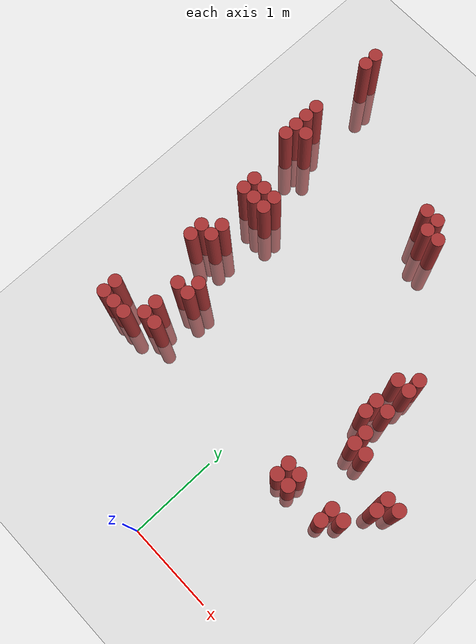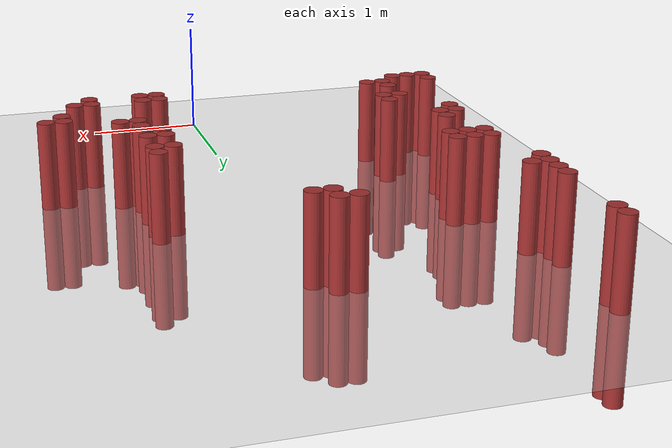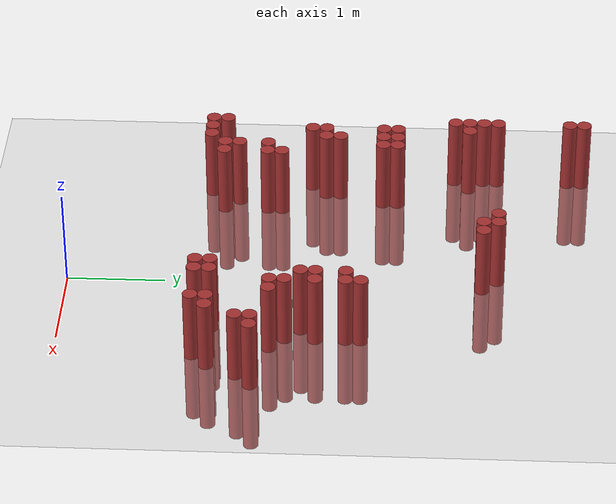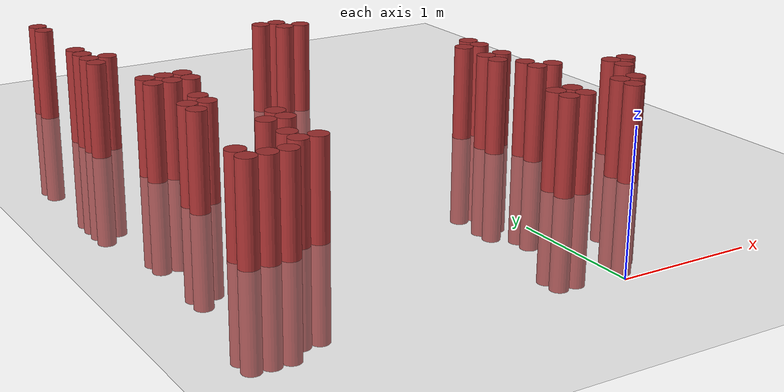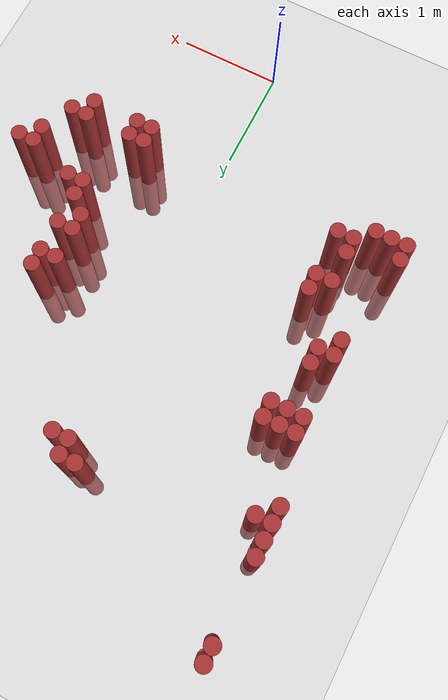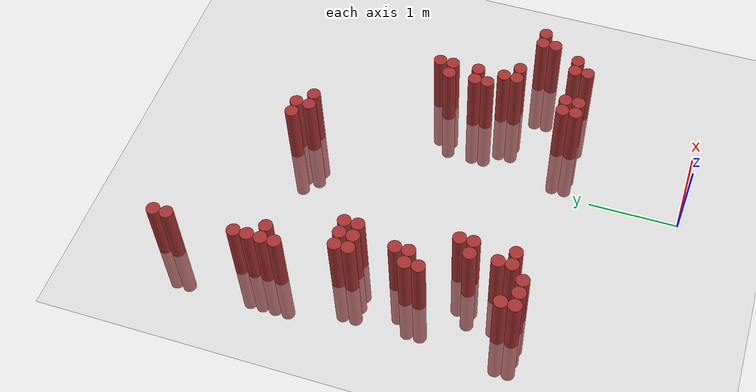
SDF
<sdf version="1.6">
 <world name="default">
  <model name="ground_plane">
   <static>1</static>
   <link name="link">
    <collision name="collision">
     <geometry><plane><normal>0 0 1</normal><size>100 100</size></plane></geometry>
     <surface><friction><ode><mu>100</mu><mu2>50</mu2></ode></friction></surface>
    </collision>
    <visual name="visual">
     <cast_shadows>0</cast_shadows>
     <geometry><plane><normal>0 0 1</normal><size>100 100</size></plane></geometry>
     <material>
      <script><uri>file://media/materials/scripts/gazebo.material</uri><name>Gazebo/Grey</name></script>
     </material>
    </visual>
   </link>
  </model>
  <model name="unit_cylinder_320">
   <static>1</static>
   <pose>-1.925000 1.375000 0.000000 0.000000 0.000000 0.000000</pose>
   <link name="link">
    <inertial>
     <mass>1</mass>
     <inertia><ixx>0.145833</ixx><ixy>0</ixy><ixz>0</ixz><iyy>0.145833</iyy><iyz>0</iyz><izz>0.125</izz></inertia>
    </inertial>
    <collision name="collision">
     <geometry><cylinder><radius>0.075000</radius><length>1.5</length></cylinder></geometry>
    </collision>
    <visual name="visual">
     <geometry><cylinder><radius>0.075000</radius><length>1.5</length></cylinder></geometry>
     <material>
      <ambient>0.648000 0.192000 0.192000 1</ambient>
      <diffuse>0.648000 0.192000 0.192000 1</diffuse>
     </material>
     <material>
      <script><name>Gazebo/Grey</name><uri>file://media/materials/scripts/gazebo.material</uri></script>
     </material>
    </visual>
   </link>
  </model>
  <model name="unit_cylinder_321">
   <static>1</static>
   <pose>-1.925000 1.525000 0.000000 0.000000 0.000000 0.000000</pose>
   <link name="link">
    <inertial>
     <mass>1</mass>
     <inertia><ixx>0.145833</ixx><ixy>0</ixy><ixz>0</ixz><iyy>0.145833</iyy><iyz>0</iyz><izz>0.125</izz></inertia>
    </inertial>
    <collision name="collision">
     <geometry><cylinder><radius>0.075000</radius><length>1.5</length></cylinder></geometry>
    </collision>
    <visual name="visual">
     <geometry><cylinder><radius>0.075000</radius><length>1.5</length></cylinder></geometry>
     <material>
      <ambient>0.648000 0.192000 0.192000 1</ambient>
      <diffuse>0.648000 0.192000 0.192000 1</diffuse>
     </material>
     <material>
      <script><name>Gazebo/Grey</name><uri>file://media/materials/scripts/gazebo.material</uri></script>
     </material>
    </visual>
   </link>
  </model>
  <model name="unit_cylinder_322">
   <static>1</static>
   <pose>-1.925000 3.925000 0.000000 0.000000 0.000000 0.000000</pose>
   <link name="link">
    <inertial>
     <mass>1</mass>
     <inertia><ixx>0.145833</ixx><ixy>0</ixy><ixz>0</ixz><iyy>0.145833</iyy><iyz>0</iyz><izz>0.125</izz></inertia>
    </inertial>
    <collision name="collision">
     <geometry><cylinder><radius>0.075000</radius><length>1.5</length></cylinder></geometry>
    </collision>
    <visual name="visual">
     <geometry><cylinder><radius>0.075000</radius><length>1.5</length></cylinder></geometry>
     <material>
      <ambient>0.648000 0.192000 0.192000 1</ambient>
      <diffuse>0.648000 0.192000 0.192000 1</diffuse>
     </material>
     <material>
      <script><name>Gazebo/Grey</name><uri>file://media/materials/scripts/gazebo.material</uri></script>
     </material>
    </visual>
   </link>
  </model>
  <model name="unit_cylinder_323">
   <static>1</static>
   <pose>-1.925000 4.075000 0.000000 0.000000 0.000000 0.000000</pose>
   <link name="link">
    <inertial>
     <mass>1</mass>
     <inertia><ixx>0.145833</ixx><ixy>0</ixy><ixz>0</ixz><iyy>0.145833</iyy><iyz>0</iyz><izz>0.125</izz></inertia>
    </inertial>
    <collision name="collision">
     <geometry><cylinder><radius>0.075000</radius><length>1.5</length></cylinder></geometry>
    </collision>
    <visual name="visual">
     <geometry><cylinder><radius>0.075000</radius><length>1.5</length></cylinder></geometry>
     <material>
      <ambient>0.648000 0.192000 0.192000 1</ambient>
      <diffuse>0.648000 0.192000 0.192000 1</diffuse>
     </material>
     <material>
      <script><name>Gazebo/Grey</name><uri>file://media/materials/scripts/gazebo.material</uri></script>
     </material>
    </visual>
   </link>
  </model>
  <model name="unit_cylinder_324">
   <static>1</static>
   <pose>-1.925000 4.225000 0.000000 0.000000 0.000000 0.000000</pose>
   <link name="link">
    <inertial>
     <mass>1</mass>
     <inertia><ixx>0.145833</ixx><ixy>0</ixy><ixz>0</ixz><iyy>0.145833</iyy><iyz>0</iyz><izz>0.125</izz></inertia>
    </inertial>
    <collision name="collision">
     <geometry><cylinder><radius>0.075000</radius><length>1.5</length></cylinder></geometry>
    </collision>
    <visual name="visual">
     <geometry><cylinder><radius>0.075000</radius><length>1.5</length></cylinder></geometry>
     <material>
      <ambient>0.648000 0.192000 0.192000 1</ambient>
      <diffuse>0.648000 0.192000 0.192000 1</diffuse>
     </material>
     <material>
      <script><name>Gazebo/Grey</name><uri>file://media/materials/scripts/gazebo.material</uri></script>
     </material>
    </visual>
   </link>
  </model>
  <model name="unit_cylinder_325">
   <static>1</static>
   <pose>-1.925000 4.375000 0.000000 0.000000 0.000000 0.000000</pose>
   <link name="link">
    <inertial>
     <mass>1</mass>
     <inertia><ixx>0.145833</ixx><ixy>0</ixy><ixz>0</ixz><iyy>0.145833</iyy><iyz>0</iyz><izz>0.125</izz></inertia>
    </inertial>
    <collision name="collision">
     <geometry><cylinder><radius>0.075000</radius><length>1.5</length></cylinder></geometry>
    </collision>
    <visual name="visual">
     <geometry><cylinder><radius>0.075000</radius><length>1.5</length></cylinder></geometry>
     <material>
      <ambient>0.648000 0.192000 0.192000 1</ambient>
      <diffuse>0.648000 0.192000 0.192000 1</diffuse>
     </material>
     <material>
      <script><name>Gazebo/Grey</name><uri>file://media/materials/scripts/gazebo.material</uri></script>
     </material>
    </visual>
   </link>
  </model>
  <model name="unit_cylinder_326">
   <static>1</static>
   <pose>-1.925000 5.125000 0.000000 0.000000 0.000000 0.000000</pose>
   <link name="link">
    <inertial>
     <mass>1</mass>
     <inertia><ixx>0.145833</ixx><ixy>0</ixy><ixz>0</ixz><iyy>0.145833</iyy><iyz>0</iyz><izz>0.125</izz></inertia>
    </inertial>
    <collision name="collision">
     <geometry><cylinder><radius>0.075000</radius><length>1.5</length></cylinder></geometry>
    </collision>
    <visual name="visual">
     <geometry><cylinder><radius>0.075000</radius><length>1.5</length></cylinder></geometry>
     <material>
      <ambient>0.648000 0.192000 0.192000 1</ambient>
      <diffuse>0.648000 0.192000 0.192000 1</diffuse>
     </material>
     <material>
      <script><name>Gazebo/Grey</name><uri>file://media/materials/scripts/gazebo.material</uri></script>
     </material>
    </visual>
   </link>
  </model>
  <model name="unit_cylinder_327">
   <static>1</static>
   <pose>-1.925000 5.275000 0.000000 0.000000 0.000000 0.000000</pose>
   <link name="link">
    <inertial>
     <mass>1</mass>
     <inertia><ixx>0.145833</ixx><ixy>0</ixy><ixz>0</ixz><iyy>0.145833</iyy><iyz>0</iyz><izz>0.125</izz></inertia>
    </inertial>
    <collision name="collision">
     <geometry><cylinder><radius>0.075000</radius><length>1.5</length></cylinder></geometry>
    </collision>
    <visual name="visual">
     <geometry><cylinder><radius>0.075000</radius><length>1.5</length></cylinder></geometry>
     <material>
      <ambient>0.648000 0.192000 0.192000 1</ambient>
      <diffuse>0.648000 0.192000 0.192000 1</diffuse>
     </material>
     <material>
      <script><name>Gazebo/Grey</name><uri>file://media/materials/scripts/gazebo.material</uri></script>
     </material>
    </visual>
   </link>
  </model>
  <model name="unit_cylinder_334">
   <static>1</static>
   <pose>-1.775000 1.375000 0.000000 0.000000 0.000000 0.000000</pose>
   <link name="link">
    <inertial>
     <mass>1</mass>
     <inertia><ixx>0.145833</ixx><ixy>0</ixy><ixz>0</ixz><iyy>0.145833</iyy><iyz>0</iyz><izz>0.125</izz></inertia>
    </inertial>
    <collision name="collision">
     <geometry><cylinder><radius>0.075000</radius><length>1.5</length></cylinder></geometry>
    </collision>
    <visual name="visual">
     <geometry><cylinder><radius>0.075000</radius><length>1.5</length></cylinder></geometry>
     <material>
      <ambient>0.648000 0.192000 0.192000 1</ambient>
      <diffuse>0.648000 0.192000 0.192000 1</diffuse>
     </material>
     <material>
      <script><name>Gazebo/Grey</name><uri>file://media/materials/scripts/gazebo.material</uri></script>
     </material>
    </visual>
   </link>
  </model>
  <model name="unit_cylinder_335">
   <static>1</static>
   <pose>-1.775000 2.425000 0.000000 0.000000 0.000000 0.000000</pose>
   <link name="link">
    <inertial>
     <mass>1</mass>
     <inertia><ixx>0.145833</ixx><ixy>0</ixy><ixz>0</ixz><iyy>0.145833</iyy><iyz>0</iyz><izz>0.125</izz></inertia>
    </inertial>
    <collision name="collision">
     <geometry><cylinder><radius>0.075000</radius><length>1.5</length></cylinder></geometry>
    </collision>
    <visual name="visual">
     <geometry><cylinder><radius>0.075000</radius><length>1.5</length></cylinder></geometry>
     <material>
      <ambient>0.648000 0.192000 0.192000 1</ambient>
      <diffuse>0.648000 0.192000 0.192000 1</diffuse>
     </material>
     <material>
      <script><name>Gazebo/Grey</name><uri>file://media/materials/scripts/gazebo.material</uri></script>
     </material>
    </visual>
   </link>
  </model>
  <model name="unit_cylinder_336">
   <static>1</static>
   <pose>-1.775000 2.575000 0.000000 0.000000 0.000000 0.000000</pose>
   <link name="link">
    <inertial>
     <mass>1</mass>
     <inertia><ixx>0.145833</ixx><ixy>0</ixy><ixz>0</ixz><iyy>0.145833</iyy><iyz>0</iyz><izz>0.125</izz></inertia>
    </inertial>
    <collision name="collision">
     <geometry><cylinder><radius>0.075000</radius><length>1.5</length></cylinder></geometry>
    </collision>
    <visual name="visual">
     <geometry><cylinder><radius>0.075000</radius><length>1.5</length></cylinder></geometry>
     <material>
      <ambient>0.648000 0.192000 0.192000 1</ambient>
      <diffuse>0.648000 0.192000 0.192000 1</diffuse>
     </material>
     <material>
      <script><name>Gazebo/Grey</name><uri>file://media/materials/scripts/gazebo.material</uri></script>
     </material>
    </visual>
   </link>
  </model>
  <model name="unit_cylinder_337">
   <static>1</static>
   <pose>-1.775000 3.175000 0.000000 0.000000 0.000000 0.000000</pose>
   <link name="link">
    <inertial>
     <mass>1</mass>
     <inertia><ixx>0.145833</ixx><ixy>0</ixy><ixz>0</ixz><iyy>0.145833</iyy><iyz>0</iyz><izz>0.125</izz></inertia>
    </inertial>
    <collision name="collision">
     <geometry><cylinder><radius>0.075000</radius><length>1.5</length></cylinder></geometry>
    </collision>
    <visual name="visual">
     <geometry><cylinder><radius>0.075000</radius><length>1.5</length></cylinder></geometry>
     <material>
      <ambient>0.648000 0.192000 0.192000 1</ambient>
      <diffuse>0.648000 0.192000 0.192000 1</diffuse>
     </material>
     <material>
      <script><name>Gazebo/Grey</name><uri>file://media/materials/scripts/gazebo.material</uri></script>
     </material>
    </visual>
   </link>
  </model>
  <model name="unit_cylinder_338">
   <static>1</static>
   <pose>-1.775000 3.325000 0.000000 0.000000 0.000000 0.000000</pose>
   <link name="link">
    <inertial>
     <mass>1</mass>
     <inertia><ixx>0.145833</ixx><ixy>0</ixy><ixz>0</ixz><iyy>0.145833</iyy><iyz>0</iyz><izz>0.125</izz></inertia>
    </inertial>
    <collision name="collision">
     <geometry><cylinder><radius>0.075000</radius><length>1.5</length></cylinder></geometry>
    </collision>
    <visual name="visual">
     <geometry><cylinder><radius>0.075000</radius><length>1.5</length></cylinder></geometry>
     <material>
      <ambient>0.648000 0.192000 0.192000 1</ambient>
      <diffuse>0.648000 0.192000 0.192000 1</diffuse>
     </material>
     <material>
      <script><name>Gazebo/Grey</name><uri>file://media/materials/scripts/gazebo.material</uri></script>
     </material>
    </visual>
   </link>
  </model>
  <model name="unit_cylinder_339">
   <static>1</static>
   <pose>-1.775000 4.075000 0.000000 0.000000 0.000000 0.000000</pose>
   <link name="link">
    <inertial>
     <mass>1</mass>
     <inertia><ixx>0.145833</ixx><ixy>0</ixy><ixz>0</ixz><iyy>0.145833</iyy><iyz>0</iyz><izz>0.125</izz></inertia>
    </inertial>
    <collision name="collision">
     <geometry><cylinder><radius>0.075000</radius><length>1.5</length></cylinder></geometry>
    </collision>
    <visual name="visual">
     <geometry><cylinder><radius>0.075000</radius><length>1.5</length></cylinder></geometry>
     <material>
      <ambient>0.648000 0.192000 0.192000 1</ambient>
      <diffuse>0.648000 0.192000 0.192000 1</diffuse>
     </material>
     <material>
      <script><name>Gazebo/Grey</name><uri>file://media/materials/scripts/gazebo.material</uri></script>
     </material>
    </visual>
   </link>
  </model>
  <model name="unit_cylinder_341">
   <static>1</static>
   <pose>-1.625000 1.375000 0.000000 0.000000 0.000000 0.000000</pose>
   <link name="link">
    <inertial>
     <mass>1</mass>
     <inertia><ixx>0.145833</ixx><ixy>0</ixy><ixz>0</ixz><iyy>0.145833</iyy><iyz>0</iyz><izz>0.125</izz></inertia>
    </inertial>
    <collision name="collision">
     <geometry><cylinder><radius>0.075000</radius><length>1.5</length></cylinder></geometry>
    </collision>
    <visual name="visual">
     <geometry><cylinder><radius>0.075000</radius><length>1.5</length></cylinder></geometry>
     <material>
      <ambient>0.648000 0.192000 0.192000 1</ambient>
      <diffuse>0.648000 0.192000 0.192000 1</diffuse>
     </material>
     <material>
      <script><name>Gazebo/Grey</name><uri>file://media/materials/scripts/gazebo.material</uri></script>
     </material>
    </visual>
   </link>
  </model>
  <model name="unit_cylinder_342">
   <static>1</static>
   <pose>-1.625000 2.575000 0.000000 0.000000 0.000000 0.000000</pose>
   <link name="link">
    <inertial>
     <mass>1</mass>
     <inertia><ixx>0.145833</ixx><ixy>0</ixy><ixz>0</ixz><iyy>0.145833</iyy><iyz>0</iyz><izz>0.125</izz></inertia>
    </inertial>
    <collision name="collision">
     <geometry><cylinder><radius>0.075000</radius><length>1.5</length></cylinder></geometry>
    </collision>
    <visual name="visual">
     <geometry><cylinder><radius>0.075000</radius><length>1.5</length></cylinder></geometry>
     <material>
      <ambient>0.648000 0.192000 0.192000 1</ambient>
      <diffuse>0.648000 0.192000 0.192000 1</diffuse>
     </material>
     <material>
      <script><name>Gazebo/Grey</name><uri>file://media/materials/scripts/gazebo.material</uri></script>
     </material>
    </visual>
   </link>
  </model>
  <model name="unit_cylinder_343">
   <static>1</static>
   <pose>-1.625000 2.725000 0.000000 0.000000 0.000000 0.000000</pose>
   <link name="link">
    <inertial>
     <mass>1</mass>
     <inertia><ixx>0.145833</ixx><ixy>0</ixy><ixz>0</ixz><iyy>0.145833</iyy><iyz>0</iyz><izz>0.125</izz></inertia>
    </inertial>
    <collision name="collision">
     <geometry><cylinder><radius>0.075000</radius><length>1.5</length></cylinder></geometry>
    </collision>
    <visual name="visual">
     <geometry><cylinder><radius>0.075000</radius><length>1.5</length></cylinder></geometry>
     <material>
      <ambient>0.648000 0.192000 0.192000 1</ambient>
      <diffuse>0.648000 0.192000 0.192000 1</diffuse>
     </material>
     <material>
      <script><name>Gazebo/Grey</name><uri>file://media/materials/scripts/gazebo.material</uri></script>
     </material>
    </visual>
   </link>
  </model>
  <model name="unit_cylinder_344">
   <static>1</static>
   <pose>-1.625000 3.175000 0.000000 0.000000 0.000000 0.000000</pose>
   <link name="link">
    <inertial>
     <mass>1</mass>
     <inertia><ixx>0.145833</ixx><ixy>0</ixy><ixz>0</ixz><iyy>0.145833</iyy><iyz>0</iyz><izz>0.125</izz></inertia>
    </inertial>
    <collision name="collision">
     <geometry><cylinder><radius>0.075000</radius><length>1.5</length></cylinder></geometry>
    </collision>
    <visual name="visual">
     <geometry><cylinder><radius>0.075000</radius><length>1.5</length></cylinder></geometry>
     <material>
      <ambient>0.648000 0.192000 0.192000 1</ambient>
      <diffuse>0.648000 0.192000 0.192000 1</diffuse>
     </material>
     <material>
      <script><name>Gazebo/Grey</name><uri>file://media/materials/scripts/gazebo.material</uri></script>
     </material>
    </visual>
   </link>
  </model>
  <model name="unit_cylinder_345">
   <static>1</static>
   <pose>-1.625000 3.325000 0.000000 0.000000 0.000000 0.000000</pose>
   <link name="link">
    <inertial>
     <mass>1</mass>
     <inertia><ixx>0.145833</ixx><ixy>0</ixy><ixz>0</ixz><iyy>0.145833</iyy><iyz>0</iyz><izz>0.125</izz></inertia>
    </inertial>
    <collision name="collision">
     <geometry><cylinder><radius>0.075000</radius><length>1.5</length></cylinder></geometry>
    </collision>
    <visual name="visual">
     <geometry><cylinder><radius>0.075000</radius><length>1.5</length></cylinder></geometry>
     <material>
      <ambient>0.648000 0.192000 0.192000 1</ambient>
      <diffuse>0.648000 0.192000 0.192000 1</diffuse>
     </material>
     <material>
      <script><name>Gazebo/Grey</name><uri>file://media/materials/scripts/gazebo.material</uri></script>
     </material>
    </visual>
   </link>
  </model>
  <model name="unit_cylinder_349">
   <static>1</static>
   <pose>-1.475000 1.525000 0.000000 0.000000 0.000000 0.000000</pose>
   <link name="link">
    <inertial>
     <mass>1</mass>
     <inertia><ixx>0.145833</ixx><ixy>0</ixy><ixz>0</ixz><iyy>0.145833</iyy><iyz>0</iyz><izz>0.125</izz></inertia>
    </inertial>
    <collision name="collision">
     <geometry><cylinder><radius>0.075000</radius><length>1.5</length></cylinder></geometry>
    </collision>
    <visual name="visual">
     <geometry><cylinder><radius>0.075000</radius><length>1.5</length></cylinder></geometry>
     <material>
      <ambient>0.648000 0.192000 0.192000 1</ambient>
      <diffuse>0.648000 0.192000 0.192000 1</diffuse>
     </material>
     <material>
      <script><name>Gazebo/Grey</name><uri>file://media/materials/scripts/gazebo.material</uri></script>
     </material>
    </visual>
   </link>
  </model>
  <model name="unit_cylinder_350">
   <static>1</static>
   <pose>-1.475000 1.675000 0.000000 0.000000 0.000000 0.000000</pose>
   <link name="link">
    <inertial>
     <mass>1</mass>
     <inertia><ixx>0.145833</ixx><ixy>0</ixy><ixz>0</ixz><iyy>0.145833</iyy><iyz>0</iyz><izz>0.125</izz></inertia>
    </inertial>
    <collision name="collision">
     <geometry><cylinder><radius>0.075000</radius><length>1.5</length></cylinder></geometry>
    </collision>
    <visual name="visual">
     <geometry><cylinder><radius>0.075000</radius><length>1.5</length></cylinder></geometry>
     <material>
      <ambient>0.648000 0.192000 0.192000 1</ambient>
      <diffuse>0.648000 0.192000 0.192000 1</diffuse>
     </material>
     <material>
      <script><name>Gazebo/Grey</name><uri>file://media/materials/scripts/gazebo.material</uri></script>
     </material>
    </visual>
   </link>
  </model>
  <model name="unit_cylinder_351">
   <static>1</static>
   <pose>-1.475000 1.975000 0.000000 0.000000 0.000000 0.000000</pose>
   <link name="link">
    <inertial>
     <mass>1</mass>
     <inertia><ixx>0.145833</ixx><ixy>0</ixy><ixz>0</ixz><iyy>0.145833</iyy><iyz>0</iyz><izz>0.125</izz></inertia>
    </inertial>
    <collision name="collision">
     <geometry><cylinder><radius>0.075000</radius><length>1.5</length></cylinder></geometry>
    </collision>
    <visual name="visual">
     <geometry><cylinder><radius>0.075000</radius><length>1.5</length></cylinder></geometry>
     <material>
      <ambient>0.648000 0.192000 0.192000 1</ambient>
      <diffuse>0.648000 0.192000 0.192000 1</diffuse>
     </material>
     <material>
      <script><name>Gazebo/Grey</name><uri>file://media/materials/scripts/gazebo.material</uri></script>
     </material>
    </visual>
   </link>
  </model>
  <model name="unit_cylinder_352">
   <static>1</static>
   <pose>-1.475000 3.175000 0.000000 0.000000 0.000000 0.000000</pose>
   <link name="link">
    <inertial>
     <mass>1</mass>
     <inertia><ixx>0.145833</ixx><ixy>0</ixy><ixz>0</ixz><iyy>0.145833</iyy><iyz>0</iyz><izz>0.125</izz></inertia>
    </inertial>
    <collision name="collision">
     <geometry><cylinder><radius>0.075000</radius><length>1.5</length></cylinder></geometry>
    </collision>
    <visual name="visual">
     <geometry><cylinder><radius>0.075000</radius><length>1.5</length></cylinder></geometry>
     <material>
      <ambient>0.648000 0.192000 0.192000 1</ambient>
      <diffuse>0.648000 0.192000 0.192000 1</diffuse>
     </material>
     <material>
      <script><name>Gazebo/Grey</name><uri>file://media/materials/scripts/gazebo.material</uri></script>
     </material>
    </visual>
   </link>
  </model>
  <model name="unit_cylinder_353">
   <static>1</static>
   <pose>-1.475000 3.325000 0.000000 0.000000 0.000000 0.000000</pose>
   <link name="link">
    <inertial>
     <mass>1</mass>
     <inertia><ixx>0.145833</ixx><ixy>0</ixy><ixz>0</ixz><iyy>0.145833</iyy><iyz>0</iyz><izz>0.125</izz></inertia>
    </inertial>
    <collision name="collision">
     <geometry><cylinder><radius>0.075000</radius><length>1.5</length></cylinder></geometry>
    </collision>
    <visual name="visual">
     <geometry><cylinder><radius>0.075000</radius><length>1.5</length></cylinder></geometry>
     <material>
      <ambient>0.648000 0.192000 0.192000 1</ambient>
      <diffuse>0.648000 0.192000 0.192000 1</diffuse>
     </material>
     <material>
      <script><name>Gazebo/Grey</name><uri>file://media/materials/scripts/gazebo.material</uri></script>
     </material>
    </visual>
   </link>
  </model>
  <model name="unit_cylinder_355">
   <static>1</static>
   <pose>-1.325000 1.525000 0.000000 0.000000 0.000000 0.000000</pose>
   <link name="link">
    <inertial>
     <mass>1</mass>
     <inertia><ixx>0.145833</ixx><ixy>0</ixy><ixz>0</ixz><iyy>0.145833</iyy><iyz>0</iyz><izz>0.125</izz></inertia>
    </inertial>
    <collision name="collision">
     <geometry><cylinder><radius>0.075000</radius><length>1.5</length></cylinder></geometry>
    </collision>
    <visual name="visual">
     <geometry><cylinder><radius>0.075000</radius><length>1.5</length></cylinder></geometry>
     <material>
      <ambient>0.648000 0.192000 0.192000 1</ambient>
      <diffuse>0.648000 0.192000 0.192000 1</diffuse>
     </material>
     <material>
      <script><name>Gazebo/Grey</name><uri>file://media/materials/scripts/gazebo.material</uri></script>
     </material>
    </visual>
   </link>
  </model>
  <model name="unit_cylinder_356">
   <static>1</static>
   <pose>-1.325000 1.975000 0.000000 0.000000 0.000000 0.000000</pose>
   <link name="link">
    <inertial>
     <mass>1</mass>
     <inertia><ixx>0.145833</ixx><ixy>0</ixy><ixz>0</ixz><iyy>0.145833</iyy><iyz>0</iyz><izz>0.125</izz></inertia>
    </inertial>
    <collision name="collision">
     <geometry><cylinder><radius>0.075000</radius><length>1.5</length></cylinder></geometry>
    </collision>
    <visual name="visual">
     <geometry><cylinder><radius>0.075000</radius><length>1.5</length></cylinder></geometry>
     <material>
      <ambient>0.648000 0.192000 0.192000 1</ambient>
      <diffuse>0.648000 0.192000 0.192000 1</diffuse>
     </material>
     <material>
      <script><name>Gazebo/Grey</name><uri>file://media/materials/scripts/gazebo.material</uri></script>
     </material>
    </visual>
   </link>
  </model>
  <model name="unit_cylinder_357">
   <static>1</static>
   <pose>-1.325000 2.125000 0.000000 0.000000 0.000000 0.000000</pose>
   <link name="link">
    <inertial>
     <mass>1</mass>
     <inertia><ixx>0.145833</ixx><ixy>0</ixy><ixz>0</ixz><iyy>0.145833</iyy><iyz>0</iyz><izz>0.125</izz></inertia>
    </inertial>
    <collision name="collision">
     <geometry><cylinder><radius>0.075000</radius><length>1.5</length></cylinder></geometry>
    </collision>
    <visual name="visual">
     <geometry><cylinder><radius>0.075000</radius><length>1.5</length></cylinder></geometry>
     <material>
      <ambient>0.648000 0.192000 0.192000 1</ambient>
      <diffuse>0.648000 0.192000 0.192000 1</diffuse>
     </material>
     <material>
      <script><name>Gazebo/Grey</name><uri>file://media/materials/scripts/gazebo.material</uri></script>
     </material>
    </visual>
   </link>
  </model>
  <model name="unit_cylinder_366">
   <static>1</static>
   <pose>-0.275000 4.375000 0.000000 0.000000 0.000000 0.000000</pose>
   <link name="link">
    <inertial>
     <mass>1</mass>
     <inertia><ixx>0.145833</ixx><ixy>0</ixy><ixz>0</ixz><iyy>0.145833</iyy><iyz>0</iyz><izz>0.125</izz></inertia>
    </inertial>
    <collision name="collision">
     <geometry><cylinder><radius>0.075000</radius><length>1.5</length></cylinder></geometry>
    </collision>
    <visual name="visual">
     <geometry><cylinder><radius>0.075000</radius><length>1.5</length></cylinder></geometry>
     <material>
      <ambient>0.648000 0.192000 0.192000 1</ambient>
      <diffuse>0.648000 0.192000 0.192000 1</diffuse>
     </material>
     <material>
      <script><name>Gazebo/Grey</name><uri>file://media/materials/scripts/gazebo.material</uri></script>
     </material>
    </visual>
   </link>
  </model>
  <model name="unit_cylinder_370">
   <static>1</static>
   <pose>-0.125000 4.225000 0.000000 0.000000 0.000000 0.000000</pose>
   <link name="link">
    <inertial>
     <mass>1</mass>
     <inertia><ixx>0.145833</ixx><ixy>0</ixy><ixz>0</ixz><iyy>0.145833</iyy><iyz>0</iyz><izz>0.125</izz></inertia>
    </inertial>
    <collision name="collision">
     <geometry><cylinder><radius>0.075000</radius><length>1.5</length></cylinder></geometry>
    </collision>
    <visual name="visual">
     <geometry><cylinder><radius>0.075000</radius><length>1.5</length></cylinder></geometry>
     <material>
      <ambient>0.648000 0.192000 0.192000 1</ambient>
      <diffuse>0.648000 0.192000 0.192000 1</diffuse>
     </material>
     <material>
      <script><name>Gazebo/Grey</name><uri>file://media/materials/scripts/gazebo.material</uri></script>
     </material>
    </visual>
   </link>
  </model>
  <model name="unit_cylinder_371">
   <static>1</static>
   <pose>-0.125000 4.375000 0.000000 0.000000 0.000000 0.000000</pose>
   <link name="link">
    <inertial>
     <mass>1</mass>
     <inertia><ixx>0.145833</ixx><ixy>0</ixy><ixz>0</ixz><iyy>0.145833</iyy><iyz>0</iyz><izz>0.125</izz></inertia>
    </inertial>
    <collision name="collision">
     <geometry><cylinder><radius>0.075000</radius><length>1.5</length></cylinder></geometry>
    </collision>
    <visual name="visual">
     <geometry><cylinder><radius>0.075000</radius><length>1.5</length></cylinder></geometry>
     <material>
      <ambient>0.648000 0.192000 0.192000 1</ambient>
      <diffuse>0.648000 0.192000 0.192000 1</diffuse>
     </material>
     <material>
      <script><name>Gazebo/Grey</name><uri>file://media/materials/scripts/gazebo.material</uri></script>
     </material>
    </visual>
   </link>
  </model>
  <model name="unit_cylinder_375">
   <static>1</static>
   <pose>0.025000 4.225000 0.000000 0.000000 0.000000 0.000000</pose>
   <link name="link">
    <inertial>
     <mass>1</mass>
     <inertia><ixx>0.145833</ixx><ixy>0</ixy><ixz>0</ixz><iyy>0.145833</iyy><iyz>0</iyz><izz>0.125</izz></inertia>
    </inertial>
    <collision name="collision">
     <geometry><cylinder><radius>0.075000</radius><length>1.5</length></cylinder></geometry>
    </collision>
    <visual name="visual">
     <geometry><cylinder><radius>0.075000</radius><length>1.5</length></cylinder></geometry>
     <material>
      <ambient>0.648000 0.192000 0.192000 1</ambient>
      <diffuse>0.648000 0.192000 0.192000 1</diffuse>
     </material>
     <material>
      <script><name>Gazebo/Grey</name><uri>file://media/materials/scripts/gazebo.material</uri></script>
     </material>
    </visual>
   </link>
  </model>
  <model name="unit_cylinder_383">
   <static>1</static>
   <pose>0.625000 1.375000 0.000000 0.000000 0.000000 0.000000</pose>
   <link name="link">
    <inertial>
     <mass>1</mass>
     <inertia><ixx>0.145833</ixx><ixy>0</ixy><ixz>0</ixz><iyy>0.145833</iyy><iyz>0</iyz><izz>0.125</izz></inertia>
    </inertial>
    <collision name="collision">
     <geometry><cylinder><radius>0.075000</radius><length>1.5</length></cylinder></geometry>
    </collision>
    <visual name="visual">
     <geometry><cylinder><radius>0.075000</radius><length>1.5</length></cylinder></geometry>
     <material>
      <ambient>0.648000 0.192000 0.192000 1</ambient>
      <diffuse>0.648000 0.192000 0.192000 1</diffuse>
     </material>
     <material>
      <script><name>Gazebo/Grey</name><uri>file://media/materials/scripts/gazebo.material</uri></script>
     </material>
    </visual>
   </link>
  </model>
  <model name="unit_cylinder_384">
   <static>1</static>
   <pose>0.625000 1.525000 0.000000 0.000000 0.000000 0.000000</pose>
   <link name="link">
    <inertial>
     <mass>1</mass>
     <inertia><ixx>0.145833</ixx><ixy>0</ixy><ixz>0</ixz><iyy>0.145833</iyy><iyz>0</iyz><izz>0.125</izz></inertia>
    </inertial>
    <collision name="collision">
     <geometry><cylinder><radius>0.075000</radius><length>1.5</length></cylinder></geometry>
    </collision>
    <visual name="visual">
     <geometry><cylinder><radius>0.075000</radius><length>1.5</length></cylinder></geometry>
     <material>
      <ambient>0.648000 0.192000 0.192000 1</ambient>
      <diffuse>0.648000 0.192000 0.192000 1</diffuse>
     </material>
     <material>
      <script><name>Gazebo/Grey</name><uri>file://media/materials/scripts/gazebo.material</uri></script>
     </material>
    </visual>
   </link>
  </model>
  <model name="unit_cylinder_385">
   <static>1</static>
   <pose>0.775000 1.375000 0.000000 0.000000 0.000000 0.000000</pose>
   <link name="link">
    <inertial>
     <mass>1</mass>
     <inertia><ixx>0.145833</ixx><ixy>0</ixy><ixz>0</ixz><iyy>0.145833</iyy><iyz>0</iyz><izz>0.125</izz></inertia>
    </inertial>
    <collision name="collision">
     <geometry><cylinder><radius>0.075000</radius><length>1.5</length></cylinder></geometry>
    </collision>
    <visual name="visual">
     <geometry><cylinder><radius>0.075000</radius><length>1.5</length></cylinder></geometry>
     <material>
      <ambient>0.648000 0.192000 0.192000 1</ambient>
      <diffuse>0.648000 0.192000 0.192000 1</diffuse>
     </material>
     <material>
      <script><name>Gazebo/Grey</name><uri>file://media/materials/scripts/gazebo.material</uri></script>
     </material>
    </visual>
   </link>
  </model>
  <model name="unit_cylinder_386">
   <static>1</static>
   <pose>0.775000 1.525000 0.000000 0.000000 0.000000 0.000000</pose>
   <link name="link">
    <inertial>
     <mass>1</mass>
     <inertia><ixx>0.145833</ixx><ixy>0</ixy><ixz>0</ixz><iyy>0.145833</iyy><iyz>0</iyz><izz>0.125</izz></inertia>
    </inertial>
    <collision name="collision">
     <geometry><cylinder><radius>0.075000</radius><length>1.5</length></cylinder></geometry>
    </collision>
    <visual name="visual">
     <geometry><cylinder><radius>0.075000</radius><length>1.5</length></cylinder></geometry>
     <material>
      <ambient>0.648000 0.192000 0.192000 1</ambient>
      <diffuse>0.648000 0.192000 0.192000 1</diffuse>
     </material>
     <material>
      <script><name>Gazebo/Grey</name><uri>file://media/materials/scripts/gazebo.material</uri></script>
     </material>
    </visual>
   </link>
  </model>
  <model name="unit_cylinder_387">
   <static>1</static>
   <pose>0.775000 2.425000 0.000000 0.000000 0.000000 0.000000</pose>
   <link name="link">
    <inertial>
     <mass>1</mass>
     <inertia><ixx>0.145833</ixx><ixy>0</ixy><ixz>0</ixz><iyy>0.145833</iyy><iyz>0</iyz><izz>0.125</izz></inertia>
    </inertial>
    <collision name="collision">
     <geometry><cylinder><radius>0.075000</radius><length>1.5</length></cylinder></geometry>
    </collision>
    <visual name="visual">
     <geometry><cylinder><radius>0.075000</radius><length>1.5</length></cylinder></geometry>
     <material>
      <ambient>0.648000 0.192000 0.192000 1</ambient>
      <diffuse>0.648000 0.192000 0.192000 1</diffuse>
     </material>
     <material>
      <script><name>Gazebo/Grey</name><uri>file://media/materials/scripts/gazebo.material</uri></script>
     </material>
    </visual>
   </link>
  </model>
  <model name="unit_cylinder_388">
   <static>1</static>
   <pose>0.775000 2.575000 0.000000 0.000000 0.000000 0.000000</pose>
   <link name="link">
    <inertial>
     <mass>1</mass>
     <inertia><ixx>0.145833</ixx><ixy>0</ixy><ixz>0</ixz><iyy>0.145833</iyy><iyz>0</iyz><izz>0.125</izz></inertia>
    </inertial>
    <collision name="collision">
     <geometry><cylinder><radius>0.075000</radius><length>1.5</length></cylinder></geometry>
    </collision>
    <visual name="visual">
     <geometry><cylinder><radius>0.075000</radius><length>1.5</length></cylinder></geometry>
     <material>
      <ambient>0.648000 0.192000 0.192000 1</ambient>
      <diffuse>0.648000 0.192000 0.192000 1</diffuse>
     </material>
     <material>
      <script><name>Gazebo/Grey</name><uri>file://media/materials/scripts/gazebo.material</uri></script>
     </material>
    </visual>
   </link>
  </model>
  <model name="unit_cylinder_389">
   <static>1</static>
   <pose>0.775000 2.875000 0.000000 0.000000 0.000000 0.000000</pose>
   <link name="link">
    <inertial>
     <mass>1</mass>
     <inertia><ixx>0.145833</ixx><ixy>0</ixy><ixz>0</ixz><iyy>0.145833</iyy><iyz>0</iyz><izz>0.125</izz></inertia>
    </inertial>
    <collision name="collision">
     <geometry><cylinder><radius>0.075000</radius><length>1.5</length></cylinder></geometry>
    </collision>
    <visual name="visual">
     <geometry><cylinder><radius>0.075000</radius><length>1.5</length></cylinder></geometry>
     <material>
      <ambient>0.648000 0.192000 0.192000 1</ambient>
      <diffuse>0.648000 0.192000 0.192000 1</diffuse>
     </material>
     <material>
      <script><name>Gazebo/Grey</name><uri>file://media/materials/scripts/gazebo.material</uri></script>
     </material>
    </visual>
   </link>
  </model>
  <model name="unit_cylinder_392">
   <static>1</static>
   <pose>0.925000 2.125000 0.000000 0.000000 0.000000 0.000000</pose>
   <link name="link">
    <inertial>
     <mass>1</mass>
     <inertia><ixx>0.145833</ixx><ixy>0</ixy><ixz>0</ixz><iyy>0.145833</iyy><iyz>0</iyz><izz>0.125</izz></inertia>
    </inertial>
    <collision name="collision">
     <geometry><cylinder><radius>0.075000</radius><length>1.5</length></cylinder></geometry>
    </collision>
    <visual name="visual">
     <geometry><cylinder><radius>0.075000</radius><length>1.5</length></cylinder></geometry>
     <material>
      <ambient>0.648000 0.192000 0.192000 1</ambient>
      <diffuse>0.648000 0.192000 0.192000 1</diffuse>
     </material>
     <material>
      <script><name>Gazebo/Grey</name><uri>file://media/materials/scripts/gazebo.material</uri></script>
     </material>
    </visual>
   </link>
  </model>
  <model name="unit_cylinder_393">
   <static>1</static>
   <pose>0.925000 2.275000 0.000000 0.000000 0.000000 0.000000</pose>
   <link name="link">
    <inertial>
     <mass>1</mass>
     <inertia><ixx>0.145833</ixx><ixy>0</ixy><ixz>0</ixz><iyy>0.145833</iyy><iyz>0</iyz><izz>0.125</izz></inertia>
    </inertial>
    <collision name="collision">
     <geometry><cylinder><radius>0.075000</radius><length>1.5</length></cylinder></geometry>
    </collision>
    <visual name="visual">
     <geometry><cylinder><radius>0.075000</radius><length>1.5</length></cylinder></geometry>
     <material>
      <ambient>0.648000 0.192000 0.192000 1</ambient>
      <diffuse>0.648000 0.192000 0.192000 1</diffuse>
     </material>
     <material>
      <script><name>Gazebo/Grey</name><uri>file://media/materials/scripts/gazebo.material</uri></script>
     </material>
    </visual>
   </link>
  </model>
  <model name="unit_cylinder_394">
   <static>1</static>
   <pose>0.925000 2.575000 0.000000 0.000000 0.000000 0.000000</pose>
   <link name="link">
    <inertial>
     <mass>1</mass>
     <inertia><ixx>0.145833</ixx><ixy>0</ixy><ixz>0</ixz><iyy>0.145833</iyy><iyz>0</iyz><izz>0.125</izz></inertia>
    </inertial>
    <collision name="collision">
     <geometry><cylinder><radius>0.075000</radius><length>1.5</length></cylinder></geometry>
    </collision>
    <visual name="visual">
     <geometry><cylinder><radius>0.075000</radius><length>1.5</length></cylinder></geometry>
     <material>
      <ambient>0.648000 0.192000 0.192000 1</ambient>
      <diffuse>0.648000 0.192000 0.192000 1</diffuse>
     </material>
     <material>
      <script><name>Gazebo/Grey</name><uri>file://media/materials/scripts/gazebo.material</uri></script>
     </material>
    </visual>
   </link>
  </model>
  <model name="unit_cylinder_395">
   <static>1</static>
   <pose>0.925000 2.875000 0.000000 0.000000 0.000000 0.000000</pose>
   <link name="link">
    <inertial>
     <mass>1</mass>
     <inertia><ixx>0.145833</ixx><ixy>0</ixy><ixz>0</ixz><iyy>0.145833</iyy><iyz>0</iyz><izz>0.125</izz></inertia>
    </inertial>
    <collision name="collision">
     <geometry><cylinder><radius>0.075000</radius><length>1.5</length></cylinder></geometry>
    </collision>
    <visual name="visual">
     <geometry><cylinder><radius>0.075000</radius><length>1.5</length></cylinder></geometry>
     <material>
      <ambient>0.648000 0.192000 0.192000 1</ambient>
      <diffuse>0.648000 0.192000 0.192000 1</diffuse>
     </material>
     <material>
      <script><name>Gazebo/Grey</name><uri>file://media/materials/scripts/gazebo.material</uri></script>
     </material>
    </visual>
   </link>
  </model>
  <model name="unit_cylinder_396">
   <static>1</static>
   <pose>0.925000 3.025000 0.000000 0.000000 0.000000 0.000000</pose>
   <link name="link">
    <inertial>
     <mass>1</mass>
     <inertia><ixx>0.145833</ixx><ixy>0</ixy><ixz>0</ixz><iyy>0.145833</iyy><iyz>0</iyz><izz>0.125</izz></inertia>
    </inertial>
    <collision name="collision">
     <geometry><cylinder><radius>0.075000</radius><length>1.5</length></cylinder></geometry>
    </collision>
    <visual name="visual">
     <geometry><cylinder><radius>0.075000</radius><length>1.5</length></cylinder></geometry>
     <material>
      <ambient>0.648000 0.192000 0.192000 1</ambient>
      <diffuse>0.648000 0.192000 0.192000 1</diffuse>
     </material>
     <material>
      <script><name>Gazebo/Grey</name><uri>file://media/materials/scripts/gazebo.material</uri></script>
     </material>
    </visual>
   </link>
  </model>
  <model name="unit_cylinder_398">
   <static>1</static>
   <pose>1.075000 2.125000 0.000000 0.000000 0.000000 0.000000</pose>
   <link name="link">
    <inertial>
     <mass>1</mass>
     <inertia><ixx>0.145833</ixx><ixy>0</ixy><ixz>0</ixz><iyy>0.145833</iyy><iyz>0</iyz><izz>0.125</izz></inertia>
    </inertial>
    <collision name="collision">
     <geometry><cylinder><radius>0.075000</radius><length>1.5</length></cylinder></geometry>
    </collision>
    <visual name="visual">
     <geometry><cylinder><radius>0.075000</radius><length>1.5</length></cylinder></geometry>
     <material>
      <ambient>0.648000 0.192000 0.192000 1</ambient>
      <diffuse>0.648000 0.192000 0.192000 1</diffuse>
     </material>
     <material>
      <script><name>Gazebo/Grey</name><uri>file://media/materials/scripts/gazebo.material</uri></script>
     </material>
    </visual>
   </link>
  </model>
  <model name="unit_cylinder_399">
   <static>1</static>
   <pose>1.225000 1.375000 0.000000 0.000000 0.000000 0.000000</pose>
   <link name="link">
    <inertial>
     <mass>1</mass>
     <inertia><ixx>0.145833</ixx><ixy>0</ixy><ixz>0</ixz><iyy>0.145833</iyy><iyz>0</iyz><izz>0.125</izz></inertia>
    </inertial>
    <collision name="collision">
     <geometry><cylinder><radius>0.075000</radius><length>1.5</length></cylinder></geometry>
    </collision>
    <visual name="visual">
     <geometry><cylinder><radius>0.075000</radius><length>1.5</length></cylinder></geometry>
     <material>
      <ambient>0.648000 0.192000 0.192000 1</ambient>
      <diffuse>0.648000 0.192000 0.192000 1</diffuse>
     </material>
     <material>
      <script><name>Gazebo/Grey</name><uri>file://media/materials/scripts/gazebo.material</uri></script>
     </material>
    </visual>
   </link>
  </model>
  <model name="unit_cylinder_400">
   <static>1</static>
   <pose>1.225000 1.525000 0.000000 0.000000 0.000000 0.000000</pose>
   <link name="link">
    <inertial>
     <mass>1</mass>
     <inertia><ixx>0.145833</ixx><ixy>0</ixy><ixz>0</ixz><iyy>0.145833</iyy><iyz>0</iyz><izz>0.125</izz></inertia>
    </inertial>
    <collision name="collision">
     <geometry><cylinder><radius>0.075000</radius><length>1.5</length></cylinder></geometry>
    </collision>
    <visual name="visual">
     <geometry><cylinder><radius>0.075000</radius><length>1.5</length></cylinder></geometry>
     <material>
      <ambient>0.648000 0.192000 0.192000 1</ambient>
      <diffuse>0.648000 0.192000 0.192000 1</diffuse>
     </material>
     <material>
      <script><name>Gazebo/Grey</name><uri>file://media/materials/scripts/gazebo.material</uri></script>
     </material>
    </visual>
   </link>
  </model>
  <model name="unit_cylinder_401">
   <static>1</static>
   <pose>1.375000 1.525000 0.000000 0.000000 0.000000 0.000000</pose>
   <link name="link">
    <inertial>
     <mass>1</mass>
     <inertia><ixx>0.145833</ixx><ixy>0</ixy><ixz>0</ixz><iyy>0.145833</iyy><iyz>0</iyz><izz>0.125</izz></inertia>
    </inertial>
    <collision name="collision">
     <geometry><cylinder><radius>0.075000</radius><length>1.5</length></cylinder></geometry>
    </collision>
    <visual name="visual">
     <geometry><cylinder><radius>0.075000</radius><length>1.5</length></cylinder></geometry>
     <material>
      <ambient>0.648000 0.192000 0.192000 1</ambient>
      <diffuse>0.648000 0.192000 0.192000 1</diffuse>
     </material>
     <material>
      <script><name>Gazebo/Grey</name><uri>file://media/materials/scripts/gazebo.material</uri></script>
     </material>
    </visual>
   </link>
  </model>
  <model name="unit_cylinder_402">
   <static>1</static>
   <pose>1.525000 1.825000 0.000000 0.000000 0.000000 0.000000</pose>
   <link name="link">
    <inertial>
     <mass>1</mass>
     <inertia><ixx>0.145833</ixx><ixy>0</ixy><ixz>0</ixz><iyy>0.145833</iyy><iyz>0</iyz><izz>0.125</izz></inertia>
    </inertial>
    <collision name="collision">
     <geometry><cylinder><radius>0.075000</radius><length>1.5</length></cylinder></geometry>
    </collision>
    <visual name="visual">
     <geometry><cylinder><radius>0.075000</radius><length>1.5</length></cylinder></geometry>
     <material>
      <ambient>0.648000 0.192000 0.192000 1</ambient>
      <diffuse>0.648000 0.192000 0.192000 1</diffuse>
     </material>
     <material>
      <script><name>Gazebo/Grey</name><uri>file://media/materials/scripts/gazebo.material</uri></script>
     </material>
    </visual>
   </link>
  </model>
  <model name="unit_cylinder_403">
   <static>1</static>
   <pose>1.525000 1.975000 0.000000 0.000000 0.000000 0.000000</pose>
   <link name="link">
    <inertial>
     <mass>1</mass>
     <inertia><ixx>0.145833</ixx><ixy>0</ixy><ixz>0</ixz><iyy>0.145833</iyy><iyz>0</iyz><izz>0.125</izz></inertia>
    </inertial>
    <collision name="collision">
     <geometry><cylinder><radius>0.075000</radius><length>1.5</length></cylinder></geometry>
    </collision>
    <visual name="visual">
     <geometry><cylinder><radius>0.075000</radius><length>1.5</length></cylinder></geometry>
     <material>
      <ambient>0.648000 0.192000 0.192000 1</ambient>
      <diffuse>0.648000 0.192000 0.192000 1</diffuse>
     </material>
     <material>
      <script><name>Gazebo/Grey</name><uri>file://media/materials/scripts/gazebo.material</uri></script>
     </material>
    </visual>
   </link>
  </model>
  <model name="unit_cylinder_404">
   <static>1</static>
   <pose>1.675000 1.975000 0.000000 0.000000 0.000000 0.000000</pose>
   <link name="link">
    <inertial>
     <mass>1</mass>
     <inertia><ixx>0.145833</ixx><ixy>0</ixy><ixz>0</ixz><iyy>0.145833</iyy><iyz>0</iyz><izz>0.125</izz></inertia>
    </inertial>
    <collision name="collision">
     <geometry><cylinder><radius>0.075000</radius><length>1.5</length></cylinder></geometry>
    </collision>
    <visual name="visual">
     <geometry><cylinder><radius>0.075000</radius><length>1.5</length></cylinder></geometry>
     <material>
      <ambient>0.648000 0.192000 0.192000 1</ambient>
      <diffuse>0.648000 0.192000 0.192000 1</diffuse>
     </material>
     <material>
      <script><name>Gazebo/Grey</name><uri>file://media/materials/scripts/gazebo.material</uri></script>
     </material>
    </visual>
   </link>
  </model>
 </world>
</sdf>
